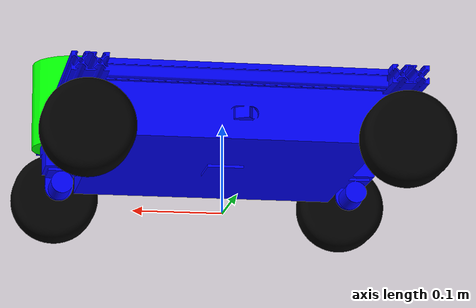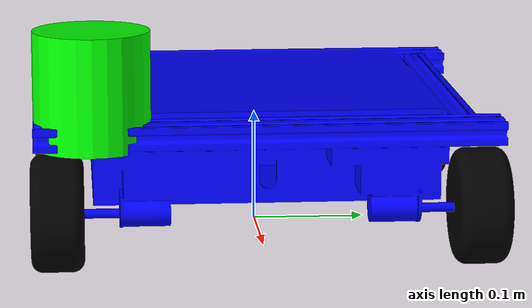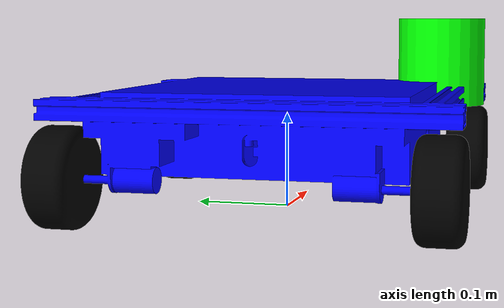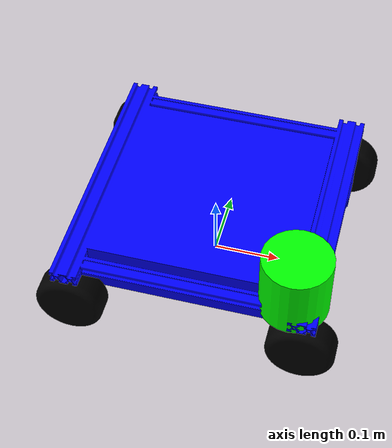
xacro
<?xml version="1.0"?>
<!-- This file contains the urdf of the base platform -->
<!-- Description of the robot in URDF format -->
<!-- Each link must have at least visual for rivz -->
<!-- Each link must have inertia and collision for gazebo -->

<robot name="rmitbot" xmlns:xacro="http://ros.org/wiki/xacro">

    <link name="base_footprint"/>

    <link name="base_link">
        <inertial>
            <origin xyz="0 0 0" rpy="0.0 0.0 0.0" />
            <mass value="3.824"/>
            <inertia
                ixx="0.092" ixy="0.02" ixz="-5.178e-05"
                iyy="0.061" iyz="0"
                izz="0.145" />
        </inertial>
        <visual>
            <origin xyz="0 0 -0.002" rpy="0 0 0" />
            <geometry>
                <mesh filename="package://rmitbot_description/meshes/base_link.stl" scale="0.001 0.001 0.001"/>
            </geometry>
            <material name="blue">
                <color rgba="0 0 1 1"/>
            </material>
        </visual>
        <collision>
            <origin xyz="0 0 0.068" rpy="0 0 0" />
            <geometry>
                <box size="0.40 0.38 0.03"/>
            </geometry>
        </collision>
        <collision>
            <origin xyz="0 0 0.023" rpy="0 0 0" />
            <geometry>
                <box size="0.30 0.38 0.065"/>
            </geometry>
        </collision>
    </link>

    <joint name="base_joint" type="fixed">
        <parent link="base_footprint"/>
        <child link="base_link" />
        <origin xyz="0 0 0.052" rpy="0 0 -${pi/2}"/>
    </joint>

    <link name="laser">
        <inertial>
            <origin xyz="0 0 0" rpy="0 0 0" />
            <mass value="0.1" />
            <inertia ixx="0.0001" ixy="0" ixz="0" iyy="0.0001" iyz="0" izz="0.0001" />
        </inertial>
        <visual>
            <origin xyz="0 0 0" rpy="0 0 0" />
            <geometry>
                <cylinder radius="0.05" length="0.1" />
            </geometry>
            <material name="green">
                <color rgba="0 1 0 1" />
            </material>
        </visual>
        <collision>
            <origin xyz="0 0 0" rpy="0 0 0" />
            <geometry>
                <cylinder radius="0.05" length="0.1" />
            </geometry>
        </collision>
    </link>

    <joint name="laser_joint" type="fixed">
        <parent link="base_link" />
        <child link="laser" />
        <origin xyz="0.15 0.15 0.1" rpy="0.0 0.0 ${pi/2}" />
    </joint>

    <link name="front_left_wheel">
        <inertial>
            <origin xyz="0 0 0" rpy="0 0 0" />
            <mass value="4.315763" />
            <inertia
                ixx="5.3947033e-03" ixy="6.821e-17" ixz="-1.137e-17"
                iyy="4.4596211e-03" iyz="0.0"
                izz="4.4596218e-03" />
        </inertial>
        <visual>
            <origin xyz="-0.02245 0 0" rpy="0 0 0" />
            <geometry>
                <mesh filename="package://rmitbot_description/meshes/front_left_wheel.stl" scale="0.001 0.001 0.001" />
            </geometry>
            <material name="black">
                <color rgba="0 0 0 1"/>
            </material>
        </visual>
        <collision>
            <origin xyz="0 0 0" rpy="0 ${pi/2} 0" />
            <geometry>
                <cylinder radius="0.05" length="0.0449"/>
            </geometry>
        </collision>
    </link>

    <joint name="front_left_wheel_joint" type="continuous">
        <origin xyz="-0.18045 0.17 -0.003" rpy="0 0 0" />
        <parent link="base_link" />
        <child link="front_left_wheel" />
        <axis xyz="1 0 0" />
    </joint>

    <link name="rear_right_wheel">
        <inertial>
            <origin xyz="0 0 0" rpy="0 0 0" />
            <mass value="4.315763" />
            <inertia
                ixx="0.0053947033" ixy="-2.274e-12" ixz="0.0"
                iyy="0.0044596211" iyz="0.0"
                izz="0.0044596218" />
        </inertial>
        <visual>
            <origin xyz="-0.02245 0 0" rpy="0 0 0" />
            <geometry>
                <mesh filename="package://rmitbot_description/meshes/rear_left_wheel.stl" scale="0.001 0.001 0.001"/>
            </geometry>
            <material name="black">
                <color rgba="0 0 0 1"/>
            </material>
        </visual>
        <collision>
            <origin xyz="0 0 0" rpy="0 ${pi/2} 0" />
            <geometry>
                <cylinder radius="0.05" length="0.0449"/>
            </geometry>
        </collision>
    </link>

    <joint name="rear_right_wheel_joint" type="continuous">
        <origin xyz="-0.18045 -0.17 -0.003" rpy="0 0 0" />
        <parent link="base_link" />
        <child link="rear_left_wheel" />
        <axis xyz="1 0 0" />
    </joint>

    <link name="front_right_wheel">
        <inertial>
            <origin xyz="0 0 0" rpy="0 0 0" />
            <mass value="4.315763" />
            <inertia
                ixx="0.0053947033" ixy="2.274e-12" ixz="0.0"
                iyy="0.0044596211" iyz="0.0"
                izz="0.0044596218" />
        </inertial>
        <visual>
            <origin xyz="-0.02245 0 0" rpy="0 0 0" />
            <geometry>
                <mesh filename="package://rmitbot_description/meshes/front_right_wheel.stl" scale="0.001 0.001 0.001"/>
            </geometry>
            <material name="black">
                <color rgba="0 0 0 1"/>
            </material>
        </visual>
        <collision>
            <origin xyz="0 0 0" rpy="0 ${pi/2} 0" />
            <geometry>
                <cylinder radius="0.05" length="0.0449"/>
            </geometry>
        </collision>
    </link>

    <joint name="front_right_wheel_joint" type="continuous">
        <origin xyz="0.18045 0.17 -0.003" rpy="0 0 0" />
        <parent link="base_link" />
        <child link="front_right_wheel" />
        <axis xyz="1 0 0" />
    </joint>

    <link name="rear_left_wheel">
        <inertial>
            <origin xyz="0 0 0" rpy="0 0 0" />
            <mass value="4.315763" />
            <inertia
                ixx="0.0053947033" ixy="-2.274e-12" ixz="0.0"
                iyy="0.0044596211" iyz="0.0"
                izz="0.0044596218" />
        </inertial>
        <visual>
            <origin xyz="-0.02245 0 0" rpy="0 0 0" />
            <geometry>
                <mesh filename="package://rmitbot_description/meshes/rear_right_wheel.stl" scale="0.001 0.001 0.001"/>
            </geometry>
            <material name="black">
                <color rgba="0 0 0 1"/>
            </material>
        </visual>
        <collision>
            <origin xyz="0 0 0" rpy="0 ${pi/2} 0" />
            <geometry>
                <cylinder radius="0.05" length="0.0449"/>
            </geometry>
        </collision>
    </link>

    <joint name="rear_left_wheel_joint" type="continuous">
        <origin xyz="0.18045 -0.17 -0.003" rpy="0 0 0" />
        <parent link="base_link" />
        <child link="rear_right_wheel" />
        <axis xyz="1 0 0" />
    </joint>
</robot>
